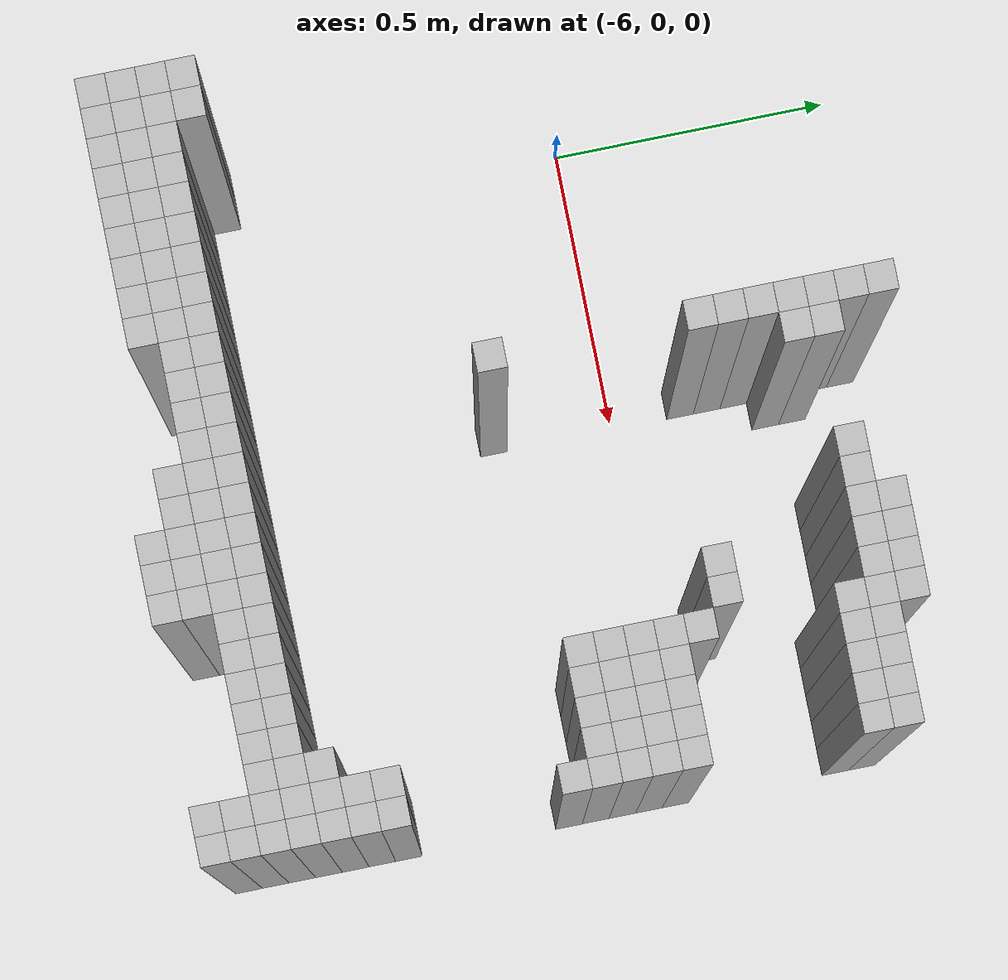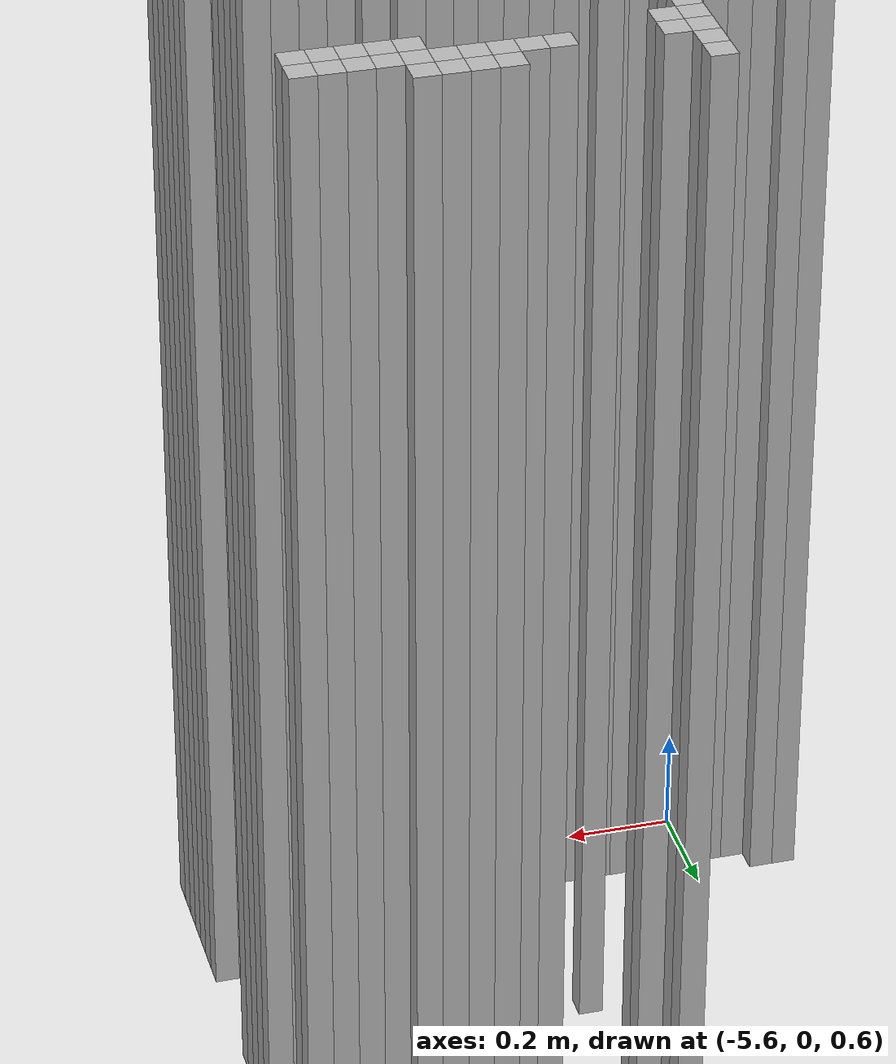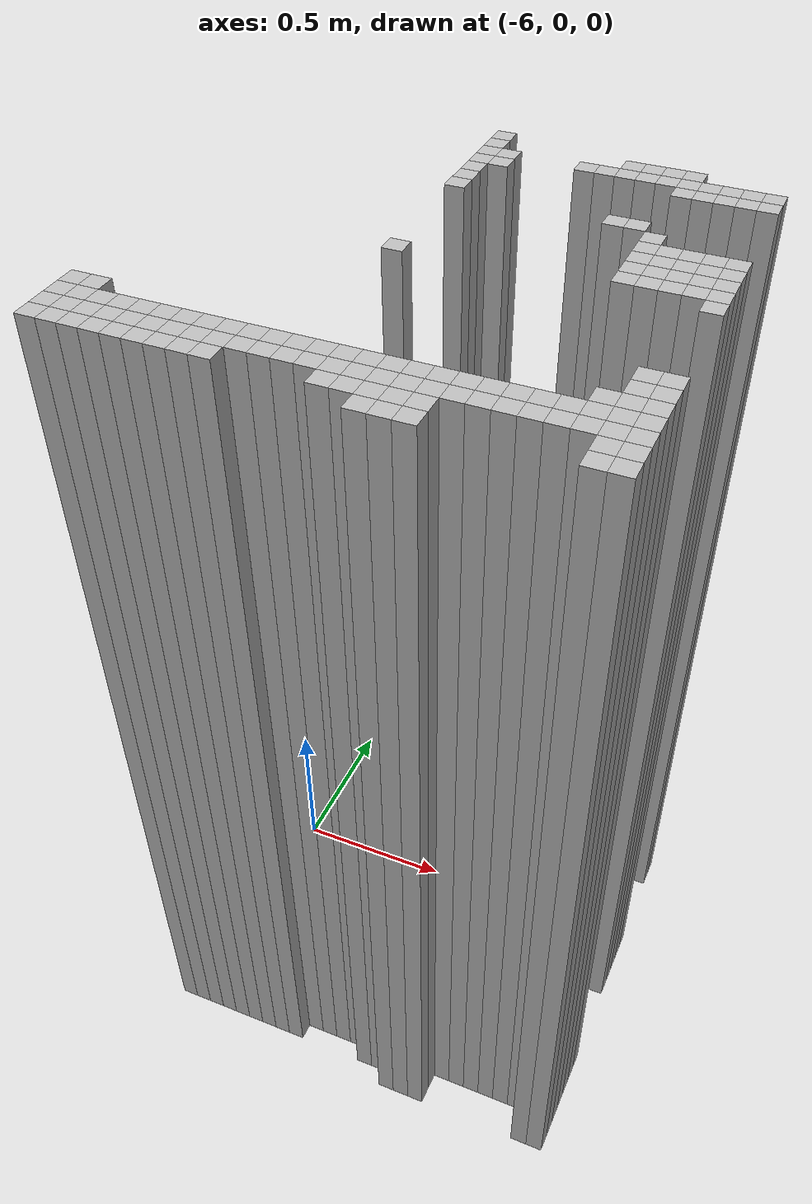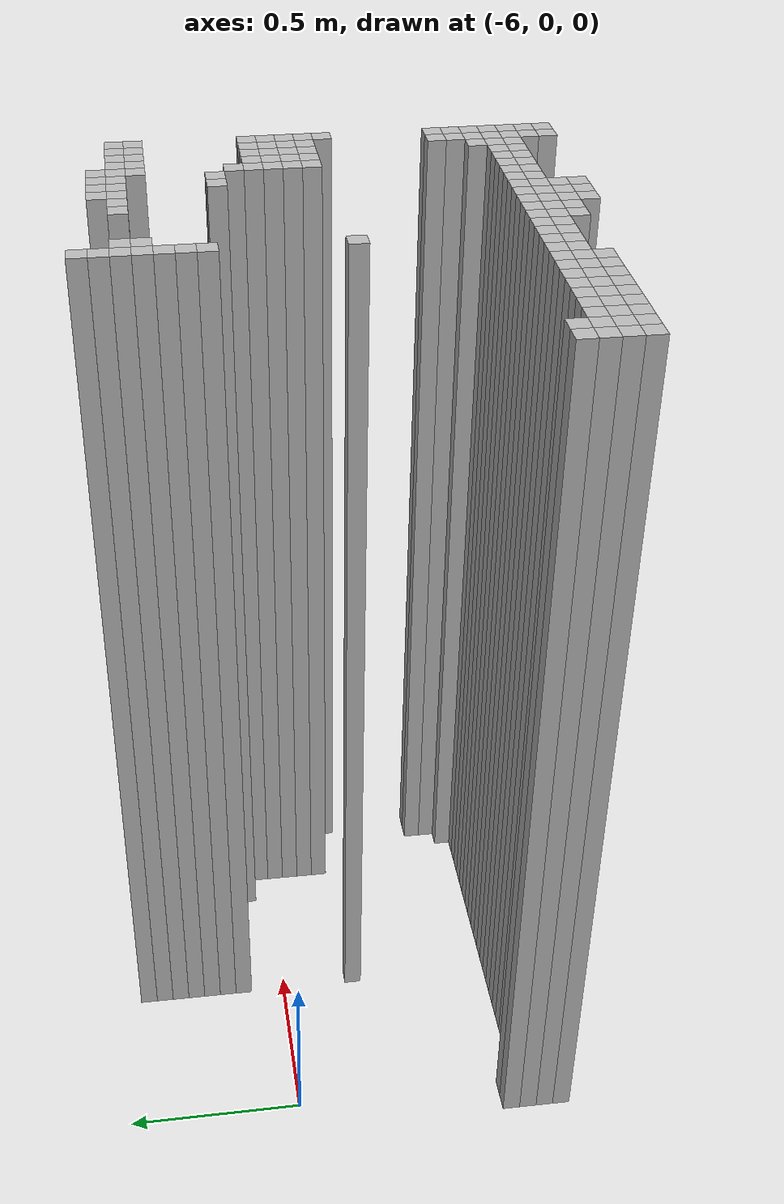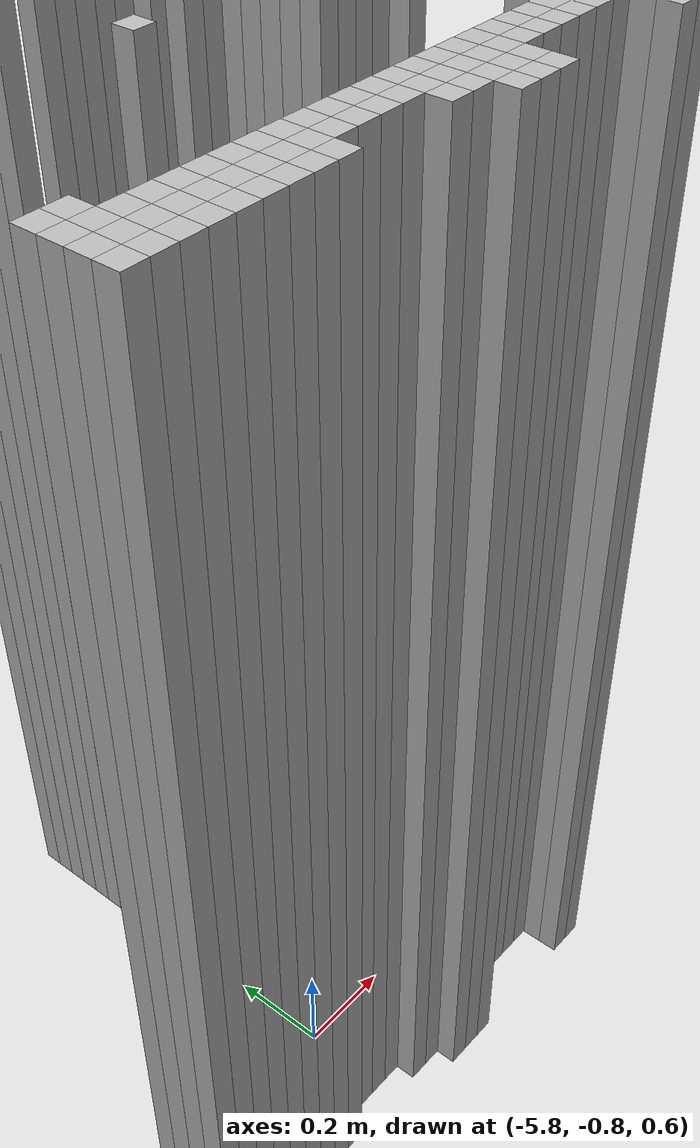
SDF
<sdf version="1.9">
 <world name="map_world">
  <model name="wall_113_145">
   <static>true</static>
   <pose>-5.511 0.430 1.250 0 0 0</pose>
   <link name="link">
    <collision name="collision"><geometry><box><size>0.050 0.050 2.500</size></box></geometry></collision>
    <visual name="visual"><geometry><box><size>0.050 0.050 2.500</size></box></geometry></visual>
   </link>
  </model>
  <model name="wall_113_146">
   <static>true</static>
   <pose>-5.511 0.380 1.250 0 0 0</pose>
   <link name="link">
    <collision name="collision"><geometry><box><size>0.050 0.050 2.500</size></box></geometry></collision>
    <visual name="visual"><geometry><box><size>0.050 0.050 2.500</size></box></geometry></visual>
   </link>
  </model>
  <model name="wall_120_146">
   <static>true</static>
   <pose>-5.161 0.380 1.250 0 0 0</pose>
   <link name="link">
    <collision name="collision"><geometry><box><size>0.050 0.050 2.500</size></box></geometry></collision>
    <visual name="visual"><geometry><box><size>0.050 0.050 2.500</size></box></geometry></visual>
   </link>
  </model>
  <model name="wall_121_146">
   <static>true</static>
   <pose>-5.111 0.380 1.250 0 0 0</pose>
   <link name="link">
    <collision name="collision"><geometry><box><size>0.050 0.050 2.500</size></box></geometry></collision>
    <visual name="visual"><geometry><box><size>0.050 0.050 2.500</size></box></geometry></visual>
   </link>
  </model>
  <model name="wall_122_146">
   <static>true</static>
   <pose>-5.061 0.380 1.250 0 0 0</pose>
   <link name="link">
    <collision name="collision"><geometry><box><size>0.050 0.050 2.500</size></box></geometry></collision>
    <visual name="visual"><geometry><box><size>0.050 0.050 2.500</size></box></geometry></visual>
   </link>
  </model>
  <model name="wall_123_146">
   <static>true</static>
   <pose>-5.011 0.380 1.250 0 0 0</pose>
   <link name="link">
    <collision name="collision"><geometry><box><size>0.050 0.050 2.500</size></box></geometry></collision>
    <visual name="visual"><geometry><box><size>0.050 0.050 2.500</size></box></geometry></visual>
   </link>
  </model>
  <model name="wall_113_147">
   <static>true</static>
   <pose>-5.511 0.330 1.250 0 0 0</pose>
   <link name="link">
    <collision name="collision"><geometry><box><size>0.050 0.050 2.500</size></box></geometry></collision>
    <visual name="visual"><geometry><box><size>0.050 0.050 2.500</size></box></geometry></visual>
   </link>
  </model>
  <model name="wall_114_147">
   <static>true</static>
   <pose>-5.461 0.330 1.250 0 0 0</pose>
   <link name="link">
    <collision name="collision"><geometry><box><size>0.050 0.050 2.500</size></box></geometry></collision>
    <visual name="visual"><geometry><box><size>0.050 0.050 2.500</size></box></geometry></visual>
   </link>
  </model>
  <model name="wall_118_147">
   <static>true</static>
   <pose>-5.261 0.330 1.250 0 0 0</pose>
   <link name="link">
    <collision name="collision"><geometry><box><size>0.050 0.050 2.500</size></box></geometry></collision>
    <visual name="visual"><geometry><box><size>0.050 0.050 2.500</size></box></geometry></visual>
   </link>
  </model>
  <model name="wall_119_147">
   <static>true</static>
   <pose>-5.211 0.330 1.250 0 0 0</pose>
   <link name="link">
    <collision name="collision"><geometry><box><size>0.050 0.050 2.500</size></box></geometry></collision>
    <visual name="visual"><geometry><box><size>0.050 0.050 2.500</size></box></geometry></visual>
   </link>
  </model>
  <model name="wall_120_147">
   <static>true</static>
   <pose>-5.161 0.330 1.250 0 0 0</pose>
   <link name="link">
    <collision name="collision"><geometry><box><size>0.050 0.050 2.500</size></box></geometry></collision>
    <visual name="visual"><geometry><box><size>0.050 0.050 2.500</size></box></geometry></visual>
   </link>
  </model>
  <model name="wall_121_147">
   <static>true</static>
   <pose>-5.111 0.330 1.250 0 0 0</pose>
   <link name="link">
    <collision name="collision"><geometry><box><size>0.050 0.050 2.500</size></box></geometry></collision>
    <visual name="visual"><geometry><box><size>0.050 0.050 2.500</size></box></geometry></visual>
   </link>
  </model>
  <model name="wall_122_147">
   <static>true</static>
   <pose>-5.061 0.330 1.250 0 0 0</pose>
   <link name="link">
    <collision name="collision"><geometry><box><size>0.050 0.050 2.500</size></box></geometry></collision>
    <visual name="visual"><geometry><box><size>0.050 0.050 2.500</size></box></geometry></visual>
   </link>
  </model>
  <model name="wall_123_147">
   <static>true</static>
   <pose>-5.011 0.330 1.250 0 0 0</pose>
   <link name="link">
    <collision name="collision"><geometry><box><size>0.050 0.050 2.500</size></box></geometry></collision>
    <visual name="visual"><geometry><box><size>0.050 0.050 2.500</size></box></geometry></visual>
   </link>
  </model>
  <model name="wall_124_147">
   <static>true</static>
   <pose>-4.961 0.330 1.250 0 0 0</pose>
   <link name="link">
    <collision name="collision"><geometry><box><size>0.050 0.050 2.500</size></box></geometry></collision>
    <visual name="visual"><geometry><box><size>0.050 0.050 2.500</size></box></geometry></visual>
   </link>
  </model>
  <model name="wall_125_147">
   <static>true</static>
   <pose>-4.911 0.330 1.250 0 0 0</pose>
   <link name="link">
    <collision name="collision"><geometry><box><size>0.050 0.050 2.500</size></box></geometry></collision>
    <visual name="visual"><geometry><box><size>0.050 0.050 2.500</size></box></geometry></visual>
   </link>
  </model>
  <model name="wall_126_147">
   <static>true</static>
   <pose>-4.861 0.330 1.250 0 0 0</pose>
   <link name="link">
    <collision name="collision"><geometry><box><size>0.050 0.050 2.500</size></box></geometry></collision>
    <visual name="visual"><geometry><box><size>0.050 0.050 2.500</size></box></geometry></visual>
   </link>
  </model>
  <model name="wall_127_147">
   <static>true</static>
   <pose>-4.811 0.330 1.250 0 0 0</pose>
   <link name="link">
    <collision name="collision"><geometry><box><size>0.050 0.050 2.500</size></box></geometry></collision>
    <visual name="visual"><geometry><box><size>0.050 0.050 2.500</size></box></geometry></visual>
   </link>
  </model>
  <model name="wall_113_148">
   <static>true</static>
   <pose>-5.511 0.280 1.250 0 0 0</pose>
   <link name="link">
    <collision name="collision"><geometry><box><size>0.050 0.050 2.500</size></box></geometry></collision>
    <visual name="visual"><geometry><box><size>0.050 0.050 2.500</size></box></geometry></visual>
   </link>
  </model>
  <model name="wall_114_148">
   <static>true</static>
   <pose>-5.461 0.280 1.250 0 0 0</pose>
   <link name="link">
    <collision name="collision"><geometry><box><size>0.050 0.050 2.500</size></box></geometry></collision>
    <visual name="visual"><geometry><box><size>0.050 0.050 2.500</size></box></geometry></visual>
   </link>
  </model>
  <model name="wall_123_148">
   <static>true</static>
   <pose>-5.011 0.280 1.250 0 0 0</pose>
   <link name="link">
    <collision name="collision"><geometry><box><size>0.050 0.050 2.500</size></box></geometry></collision>
    <visual name="visual"><geometry><box><size>0.050 0.050 2.500</size></box></geometry></visual>
   </link>
  </model>
  <model name="wall_124_148">
   <static>true</static>
   <pose>-4.961 0.280 1.250 0 0 0</pose>
   <link name="link">
    <collision name="collision"><geometry><box><size>0.050 0.050 2.500</size></box></geometry></collision>
    <visual name="visual"><geometry><box><size>0.050 0.050 2.500</size></box></geometry></visual>
   </link>
  </model>
  <model name="wall_125_148">
   <static>true</static>
   <pose>-4.911 0.280 1.250 0 0 0</pose>
   <link name="link">
    <collision name="collision"><geometry><box><size>0.050 0.050 2.500</size></box></geometry></collision>
    <visual name="visual"><geometry><box><size>0.050 0.050 2.500</size></box></geometry></visual>
   </link>
  </model>
  <model name="wall_126_148">
   <static>true</static>
   <pose>-4.861 0.280 1.250 0 0 0</pose>
   <link name="link">
    <collision name="collision"><geometry><box><size>0.050 0.050 2.500</size></box></geometry></collision>
    <visual name="visual"><geometry><box><size>0.050 0.050 2.500</size></box></geometry></visual>
   </link>
  </model>
  <model name="wall_127_148">
   <static>true</static>
   <pose>-4.811 0.280 1.250 0 0 0</pose>
   <link name="link">
    <collision name="collision"><geometry><box><size>0.050 0.050 2.500</size></box></geometry></collision>
    <visual name="visual"><geometry><box><size>0.050 0.050 2.500</size></box></geometry></visual>
   </link>
  </model>
  <model name="wall_113_149">
   <static>true</static>
   <pose>-5.511 0.230 1.250 0 0 0</pose>
   <link name="link">
    <collision name="collision"><geometry><box><size>0.050 0.050 2.500</size></box></geometry></collision>
    <visual name="visual"><geometry><box><size>0.050 0.050 2.500</size></box></geometry></visual>
   </link>
  </model>
  <model name="wall_113_150">
   <static>true</static>
   <pose>-5.511 0.180 1.250 0 0 0</pose>
   <link name="link">
    <collision name="collision"><geometry><box><size>0.050 0.050 2.500</size></box></geometry></collision>
    <visual name="visual"><geometry><box><size>0.050 0.050 2.500</size></box></geometry></visual>
   </link>
  </model>
  <model name="wall_113_151">
   <static>true</static>
   <pose>-5.511 0.130 1.250 0 0 0</pose>
   <link name="link">
    <collision name="collision"><geometry><box><size>0.050 0.050 2.500</size></box></geometry></collision>
    <visual name="visual"><geometry><box><size>0.050 0.050 2.500</size></box></geometry></visual>
   </link>
  </model>
  <model name="wall_121_152">
   <static>true</static>
   <pose>-5.111 0.080 1.250 0 0 0</pose>
   <link name="link">
    <collision name="collision"><geometry><box><size>0.050 0.050 2.500</size></box></geometry></collision>
    <visual name="visual"><geometry><box><size>0.050 0.050 2.500</size></box></geometry></visual>
   </link>
  </model>
  <model name="wall_122_152">
   <static>true</static>
   <pose>-5.061 0.080 1.250 0 0 0</pose>
   <link name="link">
    <collision name="collision"><geometry><box><size>0.050 0.050 2.500</size></box></geometry></collision>
    <visual name="visual"><geometry><box><size>0.050 0.050 2.500</size></box></geometry></visual>
   </link>
  </model>
  <model name="wall_123_153">
   <static>true</static>
   <pose>-5.011 0.030 1.250 0 0 0</pose>
   <link name="link">
    <collision name="collision"><geometry><box><size>0.050 0.050 2.500</size></box></geometry></collision>
    <visual name="visual"><geometry><box><size>0.050 0.050 2.500</size></box></geometry></visual>
   </link>
  </model>
  <model name="wall_123_154">
   <static>true</static>
   <pose>-5.011 -0.020 1.250 0 0 0</pose>
   <link name="link">
    <collision name="collision"><geometry><box><size>0.050 0.050 2.500</size></box></geometry></collision>
    <visual name="visual"><geometry><box><size>0.050 0.050 2.500</size></box></geometry></visual>
   </link>
  </model>
  <model name="wall_124_154">
   <static>true</static>
   <pose>-4.961 -0.020 1.250 0 0 0</pose>
   <link name="link">
    <collision name="collision"><geometry><box><size>0.050 0.050 2.500</size></box></geometry></collision>
    <visual name="visual"><geometry><box><size>0.050 0.050 2.500</size></box></geometry></visual>
   </link>
  </model>
  <model name="wall_125_154">
   <static>true</static>
   <pose>-4.911 -0.020 1.250 0 0 0</pose>
   <link name="link">
    <collision name="collision"><geometry><box><size>0.050 0.050 2.500</size></box></geometry></collision>
    <visual name="visual"><geometry><box><size>0.050 0.050 2.500</size></box></geometry></visual>
   </link>
  </model>
  <model name="wall_126_154">
   <static>true</static>
   <pose>-4.861 -0.020 1.250 0 0 0</pose>
   <link name="link">
    <collision name="collision"><geometry><box><size>0.050 0.050 2.500</size></box></geometry></collision>
    <visual name="visual"><geometry><box><size>0.050 0.050 2.500</size></box></geometry></visual>
   </link>
  </model>
  <model name="wall_127_154">
   <static>true</static>
   <pose>-4.811 -0.020 1.250 0 0 0</pose>
   <link name="link">
    <collision name="collision"><geometry><box><size>0.050 0.050 2.500</size></box></geometry></collision>
    <visual name="visual"><geometry><box><size>0.050 0.050 2.500</size></box></geometry></visual>
   </link>
  </model>
  <model name="wall_123_155">
   <static>true</static>
   <pose>-5.011 -0.070 1.250 0 0 0</pose>
   <link name="link">
    <collision name="collision"><geometry><box><size>0.050 0.050 2.500</size></box></geometry></collision>
    <visual name="visual"><geometry><box><size>0.050 0.050 2.500</size></box></geometry></visual>
   </link>
  </model>
  <model name="wall_124_155">
   <static>true</static>
   <pose>-4.961 -0.070 1.250 0 0 0</pose>
   <link name="link">
    <collision name="collision"><geometry><box><size>0.050 0.050 2.500</size></box></geometry></collision>
    <visual name="visual"><geometry><box><size>0.050 0.050 2.500</size></box></geometry></visual>
   </link>
  </model>
  <model name="wall_125_155">
   <static>true</static>
   <pose>-4.911 -0.070 1.250 0 0 0</pose>
   <link name="link">
    <collision name="collision"><geometry><box><size>0.050 0.050 2.500</size></box></geometry></collision>
    <visual name="visual"><geometry><box><size>0.050 0.050 2.500</size></box></geometry></visual>
   </link>
  </model>
  <model name="wall_126_155">
   <static>true</static>
   <pose>-4.861 -0.070 1.250 0 0 0</pose>
   <link name="link">
    <collision name="collision"><geometry><box><size>0.050 0.050 2.500</size></box></geometry></collision>
    <visual name="visual"><geometry><box><size>0.050 0.050 2.500</size></box></geometry></visual>
   </link>
  </model>
  <model name="wall_127_155">
   <static>true</static>
   <pose>-4.811 -0.070 1.250 0 0 0</pose>
   <link name="link">
    <collision name="collision"><geometry><box><size>0.050 0.050 2.500</size></box></geometry></collision>
    <visual name="visual"><geometry><box><size>0.050 0.050 2.500</size></box></geometry></visual>
   </link>
  </model>
  <model name="wall_123_156">
   <static>true</static>
   <pose>-5.011 -0.120 1.250 0 0 0</pose>
   <link name="link">
    <collision name="collision"><geometry><box><size>0.050 0.050 2.500</size></box></geometry></collision>
    <visual name="visual"><geometry><box><size>0.050 0.050 2.500</size></box></geometry></visual>
   </link>
  </model>
  <model name="wall_124_156">
   <static>true</static>
   <pose>-4.961 -0.120 1.250 0 0 0</pose>
   <link name="link">
    <collision name="collision"><geometry><box><size>0.050 0.050 2.500</size></box></geometry></collision>
    <visual name="visual"><geometry><box><size>0.050 0.050 2.500</size></box></geometry></visual>
   </link>
  </model>
  <model name="wall_125_156">
   <static>true</static>
   <pose>-4.911 -0.120 1.250 0 0 0</pose>
   <link name="link">
    <collision name="collision"><geometry><box><size>0.050 0.050 2.500</size></box></geometry></collision>
    <visual name="visual"><geometry><box><size>0.050 0.050 2.500</size></box></geometry></visual>
   </link>
  </model>
  <model name="wall_126_156">
   <static>true</static>
   <pose>-4.861 -0.120 1.250 0 0 0</pose>
   <link name="link">
    <collision name="collision"><geometry><box><size>0.050 0.050 2.500</size></box></geometry></collision>
    <visual name="visual"><geometry><box><size>0.050 0.050 2.500</size></box></geometry></visual>
   </link>
  </model>
  <model name="wall_127_156">
   <static>true</static>
   <pose>-4.811 -0.120 1.250 0 0 0</pose>
   <link name="link">
    <collision name="collision"><geometry><box><size>0.050 0.050 2.500</size></box></geometry></collision>
    <visual name="visual"><geometry><box><size>0.050 0.050 2.500</size></box></geometry></visual>
   </link>
  </model>
  <model name="wall_123_157">
   <static>true</static>
   <pose>-5.011 -0.170 1.250 0 0 0</pose>
   <link name="link">
    <collision name="collision"><geometry><box><size>0.050 0.050 2.500</size></box></geometry></collision>
    <visual name="visual"><geometry><box><size>0.050 0.050 2.500</size></box></geometry></visual>
   </link>
  </model>
  <model name="wall_124_157">
   <static>true</static>
   <pose>-4.961 -0.170 1.250 0 0 0</pose>
   <link name="link">
    <collision name="collision"><geometry><box><size>0.050 0.050 2.500</size></box></geometry></collision>
    <visual name="visual"><geometry><box><size>0.050 0.050 2.500</size></box></geometry></visual>
   </link>
  </model>
  <model name="wall_125_157">
   <static>true</static>
   <pose>-4.911 -0.170 1.250 0 0 0</pose>
   <link name="link">
    <collision name="collision"><geometry><box><size>0.050 0.050 2.500</size></box></geometry></collision>
    <visual name="visual"><geometry><box><size>0.050 0.050 2.500</size></box></geometry></visual>
   </link>
  </model>
  <model name="wall_126_157">
   <static>true</static>
   <pose>-4.861 -0.170 1.250 0 0 0</pose>
   <link name="link">
    <collision name="collision"><geometry><box><size>0.050 0.050 2.500</size></box></geometry></collision>
    <visual name="visual"><geometry><box><size>0.050 0.050 2.500</size></box></geometry></visual>
   </link>
  </model>
  <model name="wall_127_157">
   <static>true</static>
   <pose>-4.811 -0.170 1.250 0 0 0</pose>
   <link name="link">
    <collision name="collision"><geometry><box><size>0.050 0.050 2.500</size></box></geometry></collision>
    <visual name="visual"><geometry><box><size>0.050 0.050 2.500</size></box></geometry></visual>
   </link>
  </model>
  <model name="wall_113_158">
   <static>true</static>
   <pose>-5.511 -0.220 1.250 0 0 0</pose>
   <link name="link">
    <collision name="collision"><geometry><box><size>0.050 0.050 2.500</size></box></geometry></collision>
    <visual name="visual"><geometry><box><size>0.050 0.050 2.500</size></box></geometry></visual>
   </link>
  </model>
  <model name="wall_127_158">
   <static>true</static>
   <pose>-4.811 -0.220 1.250 0 0 0</pose>
   <link name="link">
    <collision name="collision"><geometry><box><size>0.050 0.050 2.500</size></box></geometry></collision>
    <visual name="visual"><geometry><box><size>0.050 0.050 2.500</size></box></geometry></visual>
   </link>
  </model>
  <model name="wall_126_164">
   <static>true</static>
   <pose>-4.861 -0.520 1.250 0 0 0</pose>
   <link name="link">
    <collision name="collision"><geometry><box><size>0.050 0.050 2.500</size></box></geometry></collision>
    <visual name="visual"><geometry><box><size>0.050 0.050 2.500</size></box></geometry></visual>
   </link>
  </model>
  <model name="wall_127_164">
   <static>true</static>
   <pose>-4.811 -0.520 1.250 0 0 0</pose>
   <link name="link">
    <collision name="collision"><geometry><box><size>0.050 0.050 2.500</size></box></geometry></collision>
    <visual name="visual"><geometry><box><size>0.050 0.050 2.500</size></box></geometry></visual>
   </link>
  </model>
  <model name="wall_126_165">
   <static>true</static>
   <pose>-4.861 -0.570 1.250 0 0 0</pose>
   <link name="link">
    <collision name="collision"><geometry><box><size>0.050 0.050 2.500</size></box></geometry></collision>
    <visual name="visual"><geometry><box><size>0.050 0.050 2.500</size></box></geometry></visual>
   </link>
  </model>
  <model name="wall_127_165">
   <static>true</static>
   <pose>-4.811 -0.570 1.250 0 0 0</pose>
   <link name="link">
    <collision name="collision"><geometry><box><size>0.050 0.050 2.500</size></box></geometry></collision>
    <visual name="visual"><geometry><box><size>0.050 0.050 2.500</size></box></geometry></visual>
   </link>
  </model>
  <model name="wall_102_166">
   <static>true</static>
   <pose>-6.061 -0.620 1.250 0 0 0</pose>
   <link name="link">
    <collision name="collision"><geometry><box><size>0.050 0.050 2.500</size></box></geometry></collision>
    <visual name="visual"><geometry><box><size>0.050 0.050 2.500</size></box></geometry></visual>
   </link>
  </model>
  <model name="wall_103_166">
   <static>true</static>
   <pose>-6.011 -0.620 1.250 0 0 0</pose>
   <link name="link">
    <collision name="collision"><geometry><box><size>0.050 0.050 2.500</size></box></geometry></collision>
    <visual name="visual"><geometry><box><size>0.050 0.050 2.500</size></box></geometry></visual>
   </link>
  </model>
  <model name="wall_125_166">
   <static>true</static>
   <pose>-4.911 -0.620 1.250 0 0 0</pose>
   <link name="link">
    <collision name="collision"><geometry><box><size>0.050 0.050 2.500</size></box></geometry></collision>
    <visual name="visual"><geometry><box><size>0.050 0.050 2.500</size></box></geometry></visual>
   </link>
  </model>
  <model name="wall_126_166">
   <static>true</static>
   <pose>-4.861 -0.620 1.250 0 0 0</pose>
   <link name="link">
    <collision name="collision"><geometry><box><size>0.050 0.050 2.500</size></box></geometry></collision>
    <visual name="visual"><geometry><box><size>0.050 0.050 2.500</size></box></geometry></visual>
   </link>
  </model>
  <model name="wall_127_166">
   <static>true</static>
   <pose>-4.811 -0.620 1.250 0 0 0</pose>
   <link name="link">
    <collision name="collision"><geometry><box><size>0.050 0.050 2.500</size></box></geometry></collision>
    <visual name="visual"><geometry><box><size>0.050 0.050 2.500</size></box></geometry></visual>
   </link>
  </model>
  <model name="wall_102_167">
   <static>true</static>
   <pose>-6.061 -0.670 1.250 0 0 0</pose>
   <link name="link">
    <collision name="collision"><geometry><box><size>0.050 0.050 2.500</size></box></geometry></collision>
    <visual name="visual"><geometry><box><size>0.050 0.050 2.500</size></box></geometry></visual>
   </link>
  </model>
  <model name="wall_103_167">
   <static>true</static>
   <pose>-6.011 -0.670 1.250 0 0 0</pose>
   <link name="link">
    <collision name="collision"><geometry><box><size>0.050 0.050 2.500</size></box></geometry></collision>
    <visual name="visual"><geometry><box><size>0.050 0.050 2.500</size></box></geometry></visual>
   </link>
  </model>
  <model name="wall_104_167">
   <static>true</static>
   <pose>-5.961 -0.670 1.250 0 0 0</pose>
   <link name="link">
    <collision name="collision"><geometry><box><size>0.050 0.050 2.500</size></box></geometry></collision>
    <visual name="visual"><geometry><box><size>0.050 0.050 2.500</size></box></geometry></visual>
   </link>
  </model>
  <model name="wall_105_167">
   <static>true</static>
   <pose>-5.911 -0.670 1.250 0 0 0</pose>
   <link name="link">
    <collision name="collision"><geometry><box><size>0.050 0.050 2.500</size></box></geometry></collision>
    <visual name="visual"><geometry><box><size>0.050 0.050 2.500</size></box></geometry></visual>
   </link>
  </model>
  <model name="wall_106_167">
   <static>true</static>
   <pose>-5.861 -0.670 1.250 0 0 0</pose>
   <link name="link">
    <collision name="collision"><geometry><box><size>0.050 0.050 2.500</size></box></geometry></collision>
    <visual name="visual"><geometry><box><size>0.050 0.050 2.500</size></box></geometry></visual>
   </link>
  </model>
  <model name="wall_107_167">
   <static>true</static>
   <pose>-5.811 -0.670 1.250 0 0 0</pose>
   <link name="link">
    <collision name="collision"><geometry><box><size>0.050 0.050 2.500</size></box></geometry></collision>
    <visual name="visual"><geometry><box><size>0.050 0.050 2.500</size></box></geometry></visual>
   </link>
  </model>
  <model name="wall_108_167">
   <static>true</static>
   <pose>-5.761 -0.670 1.250 0 0 0</pose>
   <link name="link">
    <collision name="collision"><geometry><box><size>0.050 0.050 2.500</size></box></geometry></collision>
    <visual name="visual"><geometry><box><size>0.050 0.050 2.500</size></box></geometry></visual>
   </link>
  </model>
  <model name="wall_109_167">
   <static>true</static>
   <pose>-5.711 -0.670 1.250 0 0 0</pose>
   <link name="link">
    <collision name="collision"><geometry><box><size>0.050 0.050 2.500</size></box></geometry></collision>
    <visual name="visual"><geometry><box><size>0.050 0.050 2.500</size></box></geometry></visual>
   </link>
  </model>
  <model name="wall_110_167">
   <static>true</static>
   <pose>-5.661 -0.670 1.250 0 0 0</pose>
   <link name="link">
    <collision name="collision"><geometry><box><size>0.050 0.050 2.500</size></box></geometry></collision>
    <visual name="visual"><geometry><box><size>0.050 0.050 2.500</size></box></geometry></visual>
   </link>
  </model>
  <model name="wall_111_167">
   <static>true</static>
   <pose>-5.611 -0.670 1.250 0 0 0</pose>
   <link name="link">
    <collision name="collision"><geometry><box><size>0.050 0.050 2.500</size></box></geometry></collision>
    <visual name="visual"><geometry><box><size>0.050 0.050 2.500</size></box></geometry></visual>
   </link>
  </model>
  <model name="wall_112_167">
   <static>true</static>
   <pose>-5.561 -0.670 1.250 0 0 0</pose>
   <link name="link">
    <collision name="collision"><geometry><box><size>0.050 0.050 2.500</size></box></geometry></collision>
    <visual name="visual"><geometry><box><size>0.050 0.050 2.500</size></box></geometry></visual>
   </link>
  </model>
  <model name="wall_113_167">
   <static>true</static>
   <pose>-5.511 -0.670 1.250 0 0 0</pose>
   <link name="link">
    <collision name="collision"><geometry><box><size>0.050 0.050 2.500</size></box></geometry></collision>
    <visual name="visual"><geometry><box><size>0.050 0.050 2.500</size></box></geometry></visual>
   </link>
  </model>
  <model name="wall_114_167">
   <static>true</static>
   <pose>-5.461 -0.670 1.250 0 0 0</pose>
   <link name="link">
    <collision name="collision"><geometry><box><size>0.050 0.050 2.500</size></box></geometry></collision>
    <visual name="visual"><geometry><box><size>0.050 0.050 2.500</size></box></geometry></visual>
   </link>
  </model>
  <model name="wall_115_167">
   <static>true</static>
   <pose>-5.411 -0.670 1.250 0 0 0</pose>
   <link name="link">
    <collision name="collision"><geometry><box><size>0.050 0.050 2.500</size></box></geometry></collision>
    <visual name="visual"><geometry><box><size>0.050 0.050 2.500</size></box></geometry></visual>
   </link>
  </model>
  <model name="wall_116_167">
   <static>true</static>
   <pose>-5.361 -0.670 1.250 0 0 0</pose>
   <link name="link">
    <collision name="collision"><geometry><box><size>0.050 0.050 2.500</size></box></geometry></collision>
    <visual name="visual"><geometry><box><size>0.050 0.050 2.500</size></box></geometry></visual>
   </link>
  </model>
  <model name="wall_117_167">
   <static>true</static>
   <pose>-5.311 -0.670 1.250 0 0 0</pose>
   <link name="link">
    <collision name="collision"><geometry><box><size>0.050 0.050 2.500</size></box></geometry></collision>
    <visual name="visual"><geometry><box><size>0.050 0.050 2.500</size></box></geometry></visual>
   </link>
  </model>
  <model name="wall_118_167">
   <static>true</static>
   <pose>-5.261 -0.670 1.250 0 0 0</pose>
   <link name="link">
    <collision name="collision"><geometry><box><size>0.050 0.050 2.500</size></box></geometry></collision>
    <visual name="visual"><geometry><box><size>0.050 0.050 2.500</size></box></geometry></visual>
   </link>
  </model>
  <model name="wall_119_167">
   <static>true</static>
   <pose>-5.211 -0.670 1.250 0 0 0</pose>
   <link name="link">
    <collision name="collision"><geometry><box><size>0.050 0.050 2.500</size></box></geometry></collision>
    <visual name="visual"><geometry><box><size>0.050 0.050 2.500</size></box></geometry></visual>
   </link>
  </model>
  <model name="wall_120_167">
   <static>true</static>
   <pose>-5.161 -0.670 1.250 0 0 0</pose>
   <link name="link">
    <collision name="collision"><geometry><box><size>0.050 0.050 2.500</size></box></geometry></collision>
    <visual name="visual"><geometry><box><size>0.050 0.050 2.500</size></box></geometry></visual>
   </link>
  </model>
  <model name="wall_121_167">
   <static>true</static>
   <pose>-5.111 -0.670 1.250 0 0 0</pose>
   <link name="link">
    <collision name="collision"><geometry><box><size>0.050 0.050 2.500</size></box></geometry></collision>
    <visual name="visual"><geometry><box><size>0.050 0.050 2.500</size></box></geometry></visual>
   </link>
  </model>
  <model name="wall_122_167">
   <static>true</static>
   <pose>-5.061 -0.670 1.250 0 0 0</pose>
   <link name="link">
    <collision name="collision"><geometry><box><size>0.050 0.050 2.500</size></box></geometry></collision>
    <visual name="visual"><geometry><box><size>0.050 0.050 2.500</size></box></geometry></visual>
   </link>
  </model>
  <model name="wall_123_167">
   <static>true</static>
   <pose>-5.011 -0.670 1.250 0 0 0</pose>
   <link name="link">
    <collision name="collision"><geometry><box><size>0.050 0.050 2.500</size></box></geometry></collision>
    <visual name="visual"><geometry><box><size>0.050 0.050 2.500</size></box></geometry></visual>
   </link>
  </model>
  <model name="wall_124_167">
   <static>true</static>
   <pose>-4.961 -0.670 1.250 0 0 0</pose>
   <link name="link">
    <collision name="collision"><geometry><box><size>0.050 0.050 2.500</size></box></geometry></collision>
    <visual name="visual"><geometry><box><size>0.050 0.050 2.500</size></box></geometry></visual>
   </link>
  </model>
  <model name="wall_125_167">
   <static>true</static>
   <pose>-4.911 -0.670 1.250 0 0 0</pose>
   <link name="link">
    <collision name="collision"><geometry><box><size>0.050 0.050 2.500</size></box></geometry></collision>
    <visual name="visual"><geometry><box><size>0.050 0.050 2.500</size></box></geometry></visual>
   </link>
  </model>
  <model name="wall_126_167">
   <static>true</static>
   <pose>-4.861 -0.670 1.250 0 0 0</pose>
   <link name="link">
    <collision name="collision"><geometry><box><size>0.050 0.050 2.500</size></box></geometry></collision>
    <visual name="visual"><geometry><box><size>0.050 0.050 2.500</size></box></geometry></visual>
   </link>
  </model>
  <model name="wall_127_167">
   <static>true</static>
   <pose>-4.811 -0.670 1.250 0 0 0</pose>
   <link name="link">
    <collision name="collision"><geometry><box><size>0.050 0.050 2.500</size></box></geometry></collision>
    <visual name="visual"><geometry><box><size>0.050 0.050 2.500</size></box></geometry></visual>
   </link>
  </model>
  <model name="wall_102_168">
   <static>true</static>
   <pose>-6.061 -0.720 1.250 0 0 0</pose>
   <link name="link">
    <collision name="collision"><geometry><box><size>0.050 0.050 2.500</size></box></geometry></collision>
    <visual name="visual"><geometry><box><size>0.050 0.050 2.500</size></box></geometry></visual>
   </link>
  </model>
  <model name="wall_103_168">
   <static>true</static>
   <pose>-6.011 -0.720 1.250 0 0 0</pose>
   <link name="link">
    <collision name="collision"><geometry><box><size>0.050 0.050 2.500</size></box></geometry></collision>
    <visual name="visual"><geometry><box><size>0.050 0.050 2.500</size></box></geometry></visual>
   </link>
  </model>
  <model name="wall_104_168">
   <static>true</static>
   <pose>-5.961 -0.720 1.250 0 0 0</pose>
   <link name="link">
    <collision name="collision"><geometry><box><size>0.050 0.050 2.500</size></box></geometry></collision>
    <visual name="visual"><geometry><box><size>0.050 0.050 2.500</size></box></geometry></visual>
   </link>
  </model>
  <model name="wall_105_168">
   <static>true</static>
   <pose>-5.911 -0.720 1.250 0 0 0</pose>
   <link name="link">
    <collision name="collision"><geometry><box><size>0.050 0.050 2.500</size></box></geometry></collision>
    <visual name="visual"><geometry><box><size>0.050 0.050 2.500</size></box></geometry></visual>
   </link>
  </model>
  <model name="wall_106_168">
   <static>true</static>
   <pose>-5.861 -0.720 1.250 0 0 0</pose>
   <link name="link">
    <collision name="collision"><geometry><box><size>0.050 0.050 2.500</size></box></geometry></collision>
    <visual name="visual"><geometry><box><size>0.050 0.050 2.500</size></box></geometry></visual>
   </link>
  </model>
  <model name="wall_107_168">
   <static>true</static>
   <pose>-5.811 -0.720 1.250 0 0 0</pose>
   <link name="link">
    <collision name="collision"><geometry><box><size>0.050 0.050 2.500</size></box></geometry></collision>
    <visual name="visual"><geometry><box><size>0.050 0.050 2.500</size></box></geometry></visual>
   </link>
  </model>
  <model name="wall_108_168">
   <static>true</static>
   <pose>-5.761 -0.720 1.250 0 0 0</pose>
   <link name="link">
    <collision name="collision"><geometry><box><size>0.050 0.050 2.500</size></box></geometry></collision>
    <visual name="visual"><geometry><box><size>0.050 0.050 2.500</size></box></geometry></visual>
   </link>
  </model>
  <model name="wall_109_168">
   <static>true</static>
   <pose>-5.711 -0.720 1.250 0 0 0</pose>
   <link name="link">
    <collision name="collision"><geometry><box><size>0.050 0.050 2.500</size></box></geometry></collision>
    <visual name="visual"><geometry><box><size>0.050 0.050 2.500</size></box></geometry></visual>
   </link>
  </model>
  <model name="wall_110_168">
   <static>true</static>
   <pose>-5.661 -0.720 1.250 0 0 0</pose>
   <link name="link">
    <collision name="collision"><geometry><box><size>0.050 0.050 2.500</size></box></geometry></collision>
    <visual name="visual"><geometry><box><size>0.050 0.050 2.500</size></box></geometry></visual>
   </link>
  </model>
  <model name="wall_111_168">
   <static>true</static>
   <pose>-5.611 -0.720 1.250 0 0 0</pose>
   <link name="link">
    <collision name="collision"><geometry><box><size>0.050 0.050 2.500</size></box></geometry></collision>
    <visual name="visual"><geometry><box><size>0.050 0.050 2.500</size></box></geometry></visual>
   </link>
  </model>
  <model name="wall_112_168">
   <static>true</static>
   <pose>-5.561 -0.720 1.250 0 0 0</pose>
   <link name="link">
    <collision name="collision"><geometry><box><size>0.050 0.050 2.500</size></box></geometry></collision>
    <visual name="visual"><geometry><box><size>0.050 0.050 2.500</size></box></geometry></visual>
   </link>
  </model>
  <model name="wall_113_168">
   <static>true</static>
   <pose>-5.511 -0.720 1.250 0 0 0</pose>
   <link name="link">
    <collision name="collision"><geometry><box><size>0.050 0.050 2.500</size></box></geometry></collision>
    <visual name="visual"><geometry><box><size>0.050 0.050 2.500</size></box></geometry></visual>
   </link>
  </model>
  <model name="wall_114_168">
   <static>true</static>
   <pose>-5.461 -0.720 1.250 0 0 0</pose>
   <link name="link">
    <collision name="collision"><geometry><box><size>0.050 0.050 2.500</size></box></geometry></collision>
    <visual name="visual"><geometry><box><size>0.050 0.050 2.500</size></box></geometry></visual>
   </link>
  </model>
  <model name="wall_115_168">
   <static>true</static>
   <pose>-5.411 -0.720 1.250 0 0 0</pose>
   <link name="link">
    <collision name="collision"><geometry><box><size>0.050 0.050 2.500</size></box></geometry></collision>
    <visual name="visual"><geometry><box><size>0.050 0.050 2.500</size></box></geometry></visual>
   </link>
  </model>
  <model name="wall_116_168">
   <static>true</static>
   <pose>-5.361 -0.720 1.250 0 0 0</pose>
   <link name="link">
    <collision name="collision"><geometry><box><size>0.050 0.050 2.500</size></box></geometry></collision>
    <visual name="visual"><geometry><box><size>0.050 0.050 2.500</size></box></geometry></visual>
   </link>
  </model>
  <model name="wall_117_168">
   <static>true</static>
   <pose>-5.311 -0.720 1.250 0 0 0</pose>
   <link name="link">
    <collision name="collision"><geometry><box><size>0.050 0.050 2.500</size></box></geometry></collision>
    <visual name="visual"><geometry><box><size>0.050 0.050 2.500</size></box></geometry></visual>
   </link>
  </model>
  <model name="wall_118_168">
   <static>true</static>
   <pose>-5.261 -0.720 1.250 0 0 0</pose>
   <link name="link">
    <collision name="collision"><geometry><box><size>0.050 0.050 2.500</size></box></geometry></collision>
    <visual name="visual"><geometry><box><size>0.050 0.050 2.500</size></box></geometry></visual>
   </link>
  </model>
  <model name="wall_119_168">
   <static>true</static>
   <pose>-5.211 -0.720 1.250 0 0 0</pose>
   <link name="link">
    <collision name="collision"><geometry><box><size>0.050 0.050 2.500</size></box></geometry></collision>
    <visual name="visual"><geometry><box><size>0.050 0.050 2.500</size></box></geometry></visual>
   </link>
  </model>
  <model name="wall_120_168">
   <static>true</static>
   <pose>-5.161 -0.720 1.250 0 0 0</pose>
   <link name="link">
    <collision name="collision"><geometry><box><size>0.050 0.050 2.500</size></box></geometry></collision>
    <visual name="visual"><geometry><box><size>0.050 0.050 2.500</size></box></geometry></visual>
   </link>
  </model>
  <model name="wall_121_168">
   <static>true</static>
   <pose>-5.111 -0.720 1.250 0 0 0</pose>
   <link name="link">
    <collision name="collision"><geometry><box><size>0.050 0.050 2.500</size></box></geometry></collision>
    <visual name="visual"><geometry><box><size>0.050 0.050 2.500</size></box></geometry></visual>
   </link>
  </model>
  <model name="wall_122_168">
   <static>true</static>
   <pose>-5.061 -0.720 1.250 0 0 0</pose>
   <link name="link">
    <collision name="collision"><geometry><box><size>0.050 0.050 2.500</size></box></geometry></collision>
    <visual name="visual"><geometry><box><size>0.050 0.050 2.500</size></box></geometry></visual>
   </link>
  </model>
  <model name="wall_123_168">
   <static>true</static>
   <pose>-5.011 -0.720 1.250 0 0 0</pose>
   <link name="link">
    <collision name="collision"><geometry><box><size>0.050 0.050 2.500</size></box></geometry></collision>
    <visual name="visual"><geometry><box><size>0.050 0.050 2.500</size></box></geometry></visual>
   </link>
  </model>
  <model name="wall_124_168">
   <static>true</static>
   <pose>-4.961 -0.720 1.250 0 0 0</pose>
   <link name="link">
    <collision name="collision"><geometry><box><size>0.050 0.050 2.500</size></box></geometry></collision>
    <visual name="visual"><geometry><box><size>0.050 0.050 2.500</size></box></geometry></visual>
   </link>
  </model>
  <model name="wall_125_168">
   <static>true</static>
   <pose>-4.911 -0.720 1.250 0 0 0</pose>
   <link name="link">
    <collision name="collision"><geometry><box><size>0.050 0.050 2.500</size></box></geometry></collision>
    <visual name="visual"><geometry><box><size>0.050 0.050 2.500</size></box></geometry></visual>
   </link>
  </model>
  <model name="wall_126_168">
   <static>true</static>
   <pose>-4.861 -0.720 1.250 0 0 0</pose>
   <link name="link">
    <collision name="collision"><geometry><box><size>0.050 0.050 2.500</size></box></geometry></collision>
    <visual name="visual"><geometry><box><size>0.050 0.050 2.500</size></box></geometry></visual>
   </link>
  </model>
  <model name="wall_127_168">
   <static>true</static>
   <pose>-4.811 -0.720 1.250 0 0 0</pose>
   <link name="link">
    <collision name="collision"><geometry><box><size>0.050 0.050 2.500</size></box></geometry></collision>
    <visual name="visual"><geometry><box><size>0.050 0.050 2.500</size></box></geometry></visual>
   </link>
  </model>
  <model name="wall_102_169">
   <static>true</static>
   <pose>-6.061 -0.770 1.250 0 0 0</pose>
   <link name="link">
    <collision name="collision"><geometry><box><size>0.050 0.050 2.500</size></box></geometry></collision>
    <visual name="visual"><geometry><box><size>0.050 0.050 2.500</size></box></geometry></visual>
   </link>
  </model>
  <model name="wall_103_169">
   <static>true</static>
   <pose>-6.011 -0.770 1.250 0 0 0</pose>
   <link name="link">
    <collision name="collision"><geometry><box><size>0.050 0.050 2.500</size></box></geometry></collision>
    <visual name="visual"><geometry><box><size>0.050 0.050 2.500</size></box></geometry></visual>
   </link>
  </model>
  <model name="wall_104_169">
   <static>true</static>
   <pose>-5.961 -0.770 1.250 0 0 0</pose>
   <link name="link">
    <collision name="collision"><geometry><box><size>0.050 0.050 2.500</size></box></geometry></collision>
    <visual name="visual"><geometry><box><size>0.050 0.050 2.500</size></box></geometry></visual>
   </link>
  </model>
  <model name="wall_105_169">
   <static>true</static>
   <pose>-5.911 -0.770 1.250 0 0 0</pose>
   <link name="link">
    <collision name="collision"><geometry><box><size>0.050 0.050 2.500</size></box></geometry></collision>
    <visual name="visual"><geometry><box><size>0.050 0.050 2.500</size></box></geometry></visual>
   </link>
  </model>
  <model name="wall_106_169">
   <static>true</static>
   <pose>-5.861 -0.770 1.250 0 0 0</pose>
   <link name="link">
    <collision name="collision"><geometry><box><size>0.050 0.050 2.500</size></box></geometry></collision>
    <visual name="visual"><geometry><box><size>0.050 0.050 2.500</size></box></geometry></visual>
   </link>
  </model>
  <model name="wall_107_169">
   <static>true</static>
   <pose>-5.811 -0.770 1.250 0 0 0</pose>
   <link name="link">
    <collision name="collision"><geometry><box><size>0.050 0.050 2.500</size></box></geometry></collision>
    <visual name="visual"><geometry><box><size>0.050 0.050 2.500</size></box></geometry></visual>
   </link>
  </model>
  <model name="wall_108_169">
   <static>true</static>
   <pose>-5.761 -0.770 1.250 0 0 0</pose>
   <link name="link">
    <collision name="collision"><geometry><box><size>0.050 0.050 2.500</size></box></geometry></collision>
    <visual name="visual"><geometry><box><size>0.050 0.050 2.500</size></box></geometry></visual>
   </link>
  </model>
  <model name="wall_109_169">
   <static>true</static>
   <pose>-5.711 -0.770 1.250 0 0 0</pose>
   <link name="link">
    <collision name="collision"><geometry><box><size>0.050 0.050 2.500</size></box></geometry></collision>
    <visual name="visual"><geometry><box><size>0.050 0.050 2.500</size></box></geometry></visual>
   </link>
  </model>
  <model name="wall_110_169">
   <static>true</static>
   <pose>-5.661 -0.770 1.250 0 0 0</pose>
   <link name="link">
    <collision name="collision"><geometry><box><size>0.050 0.050 2.500</size></box></geometry></collision>
    <visual name="visual"><geometry><box><size>0.050 0.050 2.500</size></box></geometry></visual>
   </link>
  </model>
  <model name="wall_115_169">
   <static>true</static>
   <pose>-5.411 -0.770 1.250 0 0 0</pose>
   <link name="link">
    <collision name="collision"><geometry><box><size>0.050 0.050 2.500</size></box></geometry></collision>
    <visual name="visual"><geometry><box><size>0.050 0.050 2.500</size></box></geometry></visual>
   </link>
  </model>
  <model name="wall_116_169">
   <static>true</static>
   <pose>-5.361 -0.770 1.250 0 0 0</pose>
   <link name="link">
    <collision name="collision"><geometry><box><size>0.050 0.050 2.500</size></box></geometry></collision>
    <visual name="visual"><geometry><box><size>0.050 0.050 2.500</size></box></geometry></visual>
   </link>
  </model>
  <model name="wall_117_169">
   <static>true</static>
   <pose>-5.311 -0.770 1.250 0 0 0</pose>
   <link name="link">
    <collision name="collision"><geometry><box><size>0.050 0.050 2.500</size></box></geometry></collision>
    <visual name="visual"><geometry><box><size>0.050 0.050 2.500</size></box></geometry></visual>
   </link>
  </model>
  <model name="wall_118_169">
   <static>true</static>
   <pose>-5.261 -0.770 1.250 0 0 0</pose>
   <link name="link">
    <collision name="collision"><geometry><box><size>0.050 0.050 2.500</size></box></geometry></collision>
    <visual name="visual"><geometry><box><size>0.050 0.050 2.500</size></box></geometry></visual>
   </link>
  </model>
  <model name="wall_119_169">
   <static>true</static>
   <pose>-5.211 -0.770 1.250 0 0 0</pose>
   <link name="link">
    <collision name="collision"><geometry><box><size>0.050 0.050 2.500</size></box></geometry></collision>
    <visual name="visual"><geometry><box><size>0.050 0.050 2.500</size></box></geometry></visual>
   </link>
  </model>
  <model name="wall_126_169">
   <static>true</static>
   <pose>-4.861 -0.770 1.250 0 0 0</pose>
   <link name="link">
    <collision name="collision"><geometry><box><size>0.050 0.050 2.500</size></box></geometry></collision>
    <visual name="visual"><geometry><box><size>0.050 0.050 2.500</size></box></geometry></visual>
   </link>
  </model>
  <model name="wall_127_169">
   <static>true</static>
   <pose>-4.811 -0.770 1.250 0 0 0</pose>
   <link name="link">
    <collision name="collision"><geometry><box><size>0.050 0.050 2.500</size></box></geometry></collision>
    <visual name="visual"><geometry><box><size>0.050 0.050 2.500</size></box></geometry></visual>
   </link>
  </model>
  <model name="wall_117_170">
   <static>true</static>
   <pose>-5.311 -0.820 1.250 0 0 0</pose>
   <link name="link">
    <collision name="collision"><geometry><box><size>0.050 0.050 2.500</size></box></geometry></collision>
    <visual name="visual"><geometry><box><size>0.050 0.050 2.500</size></box></geometry></visual>
   </link>
  </model>
  <model name="wall_118_170">
   <static>true</static>
   <pose>-5.261 -0.820 1.250 0 0 0</pose>
   <link name="link">
    <collision name="collision"><geometry><box><size>0.050 0.050 2.500</size></box></geometry></collision>
    <visual name="visual"><geometry><box><size>0.050 0.050 2.500</size></box></geometry></visual>
   </link>
  </model>
  <model name="wall_119_170">
   <static>true</static>
   <pose>-5.211 -0.820 1.250 0 0 0</pose>
   <link name="link">
    <collision name="collision"><geometry><box><size>0.050 0.050 2.500</size></box></geometry></collision>
    <visual name="visual"><geometry><box><size>0.050 0.050 2.500</size></box></geometry></visual>
   </link>
  </model>
  <model name="wall_126_170">
   <static>true</static>
   <pose>-4.861 -0.820 1.250 0 0 0</pose>
   <link name="link">
    <collision name="collision"><geometry><box><size>0.050 0.050 2.500</size></box></geometry></collision>
    <visual name="visual"><geometry><box><size>0.050 0.050 2.500</size></box></geometry></visual>
   </link>
  </model>
  <model name="wall_127_170">
   <static>true</static>
   <pose>-4.811 -0.820 1.250 0 0 0</pose>
   <link name="link">
    <collision name="collision"><geometry><box><size>0.050 0.050 2.500</size></box></geometry></collision>
    <visual name="visual"><geometry><box><size>0.050 0.050 2.500</size></box></geometry></visual>
   </link>
  </model>
 </world>
</sdf>
